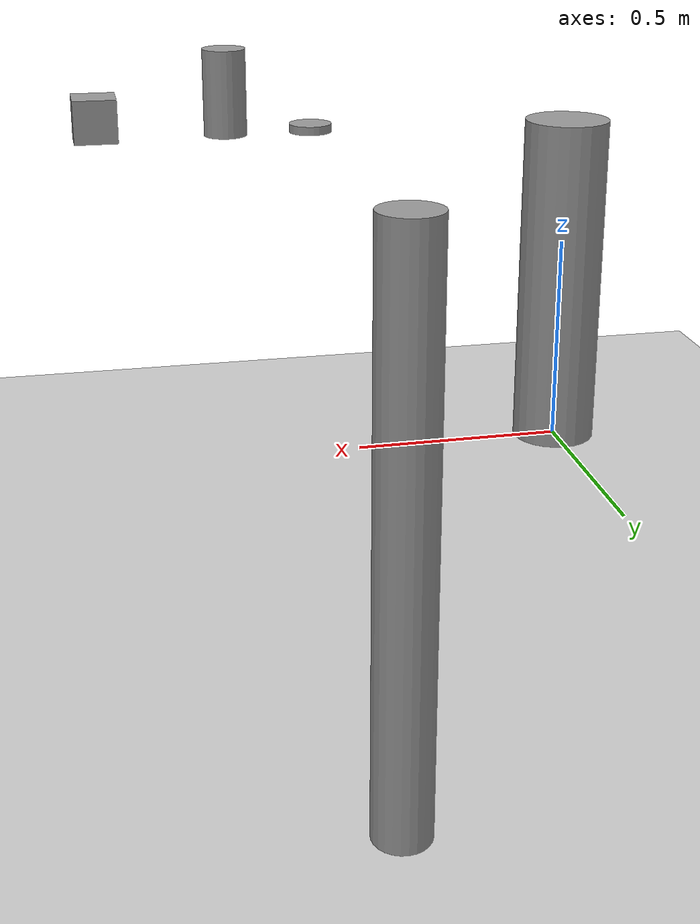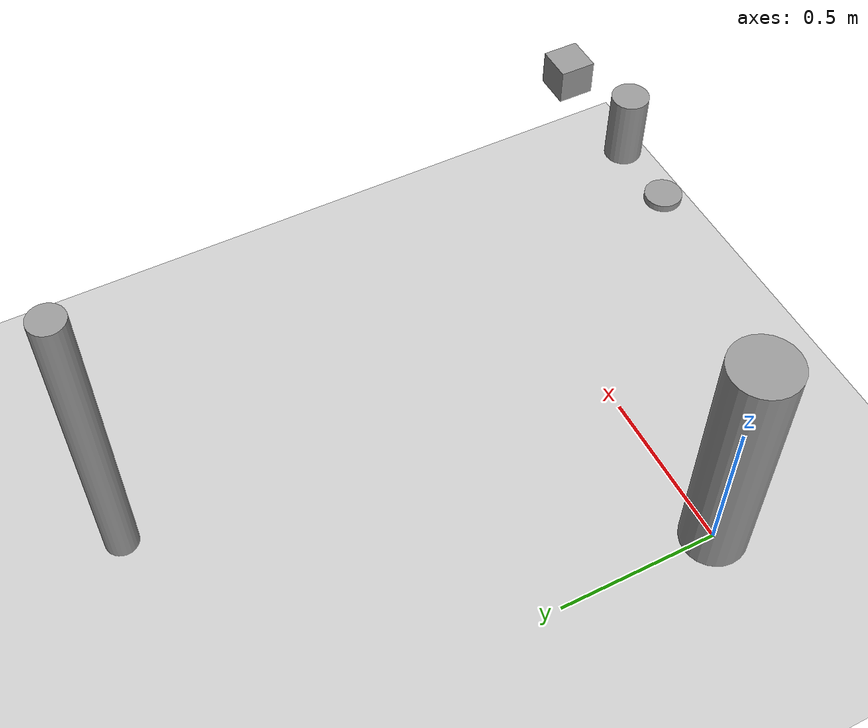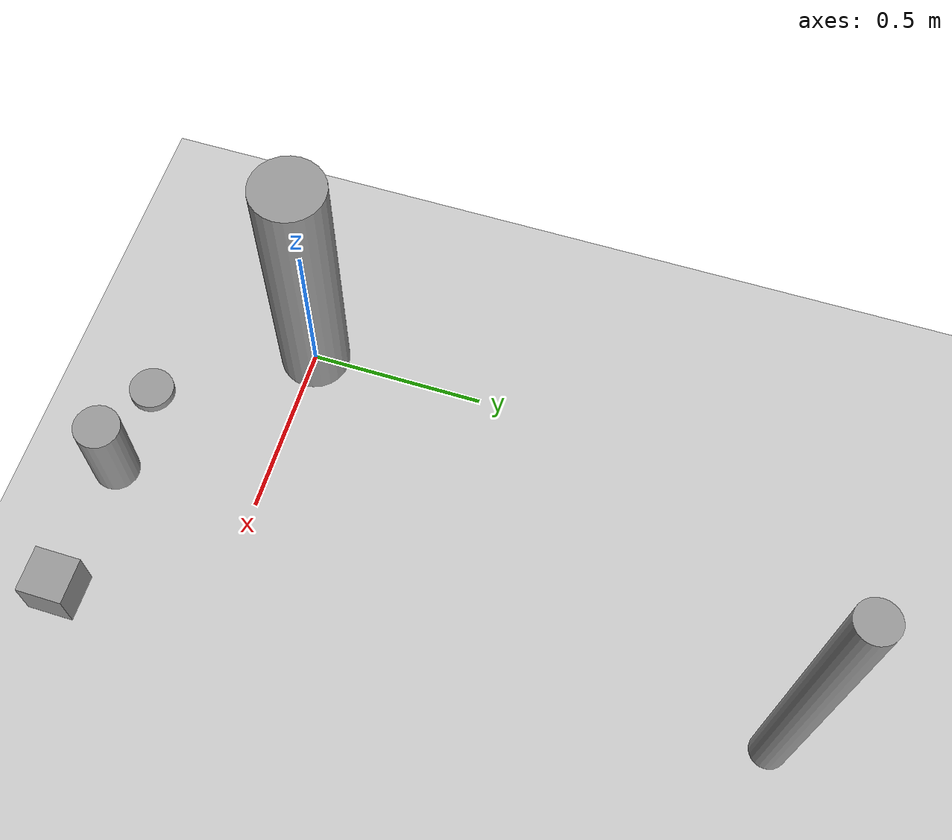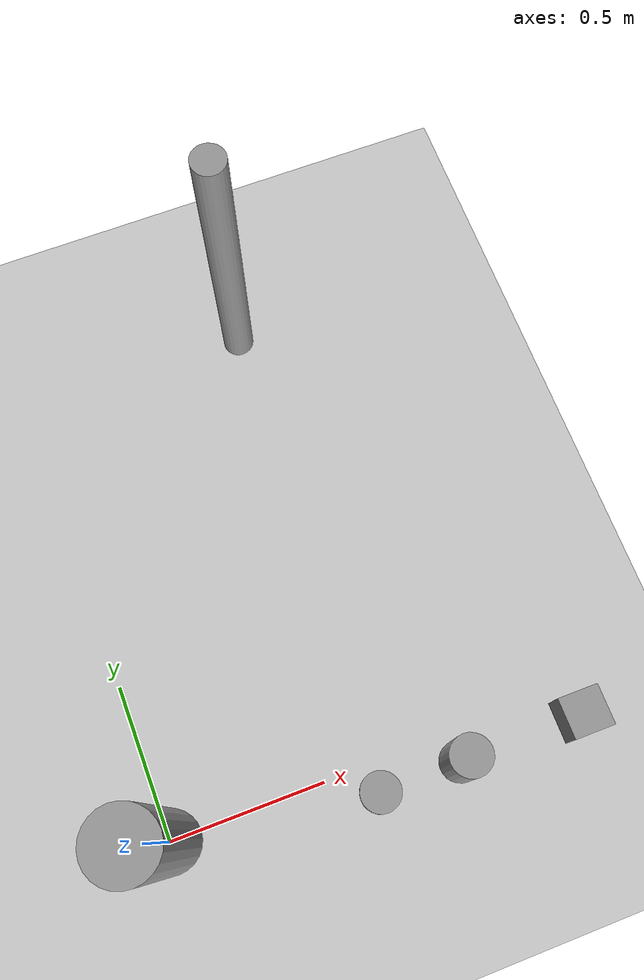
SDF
<sdf version="1.6">
 <world name="default">
  <light name="sun" type="directional">
   <pose>0 0 10 0 -0 0</pose>
   <diffuse>0.8 0.8 0.8 1</diffuse>
   <specular>0.2 0.2 0.2 1</specular>
   <attenuation>
    <range>1000</range>
    <constant>0.9</constant>
    <linear>0.01</linear>
    <quadratic>0.001</quadratic>
   </attenuation>
   <direction>-0.5 0.1 -0.9</direction>
  </light>
  <model name="ground_plane">
   <static>1</static>
   <link name="link">
    <collision name="collision">
     <geometry><plane><normal>0 0 1</normal><size>100 100</size></plane></geometry>
     <surface>
      <contact><collide_bitmask>65535</collide_bitmask></contact>
      <friction><ode><mu>100</mu><mu2>50</mu2></ode></friction>
     </surface>
    </collision>
    <visual name="visual">
     <cast_shadows>0</cast_shadows>
     <geometry><plane><normal>0 0 1</normal><size>100 100</size></plane></geometry>
     <material>
      <script><uri>file://media/materials/scripts/gazebo.material</uri><name>Gazebo/Grey</name></script>
     </material>
    </visual>
   </link>
  </model>
  <gravity>0 0 -9.8</gravity>
  <magnetic_field>6e-06 2.3e-05 -4.2e-05</magnetic_field>
  <atmosphere type="adiabatic"/>
  <physics name="default_physics" default="0" type="ode">
   <max_step_size>0.001</max_step_size>
   <real_time_factor>1</real_time_factor>
   <real_time_update_rate>1000</real_time_update_rate>
  </physics>
  <scene><ambient>0.4 0.4 0.4 1</ambient><background>0.7 0.7 0.7 1</background><shadows>1</shadows></scene>
  <spherical_coordinates>
   <surface_model>EARTH_WGS84</surface_model>
   <latitude_deg>0</latitude_deg>
   <longitude_deg>0</longitude_deg>
   <elevation>0</elevation>
   <heading_deg>0</heading_deg>
  </spherical_coordinates>
  <model name="ur10_cylinder">
   <static>1</static>
   <link name="link">
    <inertial>
     <mass>1</mass>
     <inertia><ixx>0.145833</ixx><ixy>0</ixy><ixz>0</ixz><iyy>0.145833</iyy><iyz>0</iyz><izz>0.125</izz></inertia>
    </inertial>
    <visual name="visual">
     <geometry><cylinder><radius>0.1</radius><length>0.8</length></cylinder></geometry>
     <material>
      <script><name>Gazebo/Grey</name><uri>file://media/materials/scripts/gazebo.material</uri></script>
      <shader type="vertex"><normal_map>__default__</normal_map></shader>
      <ambient>0.3 0.3 0.3 1</ambient>
      <diffuse>0.7 0.7 0.7 1</diffuse>
      <specular>0.01 0.01 0.01 1</specular>
      <emissive>0 0 0 1</emissive>
     </material>
    </visual>
    <collision name="collision">
     <geometry><cylinder><radius>0.1</radius><length>0.8</length></cylinder></geometry>
     <surface>
      <friction>
       <ode><mu>1</mu><mu2>1</mu2><fdir1>0 0 0</fdir1><slip1>0</slip1><slip2>0</slip2></ode>
       <torsional>
        <coefficient>1</coefficient>
        <patch_radius>0</patch_radius>
        <surface_radius>0</surface_radius>
        <use_patch_radius>1</use_patch_radius>
        <ode><slip>0</slip></ode>
       </torsional>
      </friction>
      <bounce><restitution_coefficient>0</restitution_coefficient><threshold>1e+06</threshold></bounce>
      <contact>
       <collide_without_contact>0</collide_without_contact>
       <collide_without_contact_bitmask>1</collide_without_contact_bitmask>
       <collide_bitmask>1</collide_bitmask>
       <ode>
        <soft_cfm>0</soft_cfm>
        <soft_erp>0.2</soft_erp>
        <kp>1e+13</kp>
        <kd>1</kd>
        <max_vel>0.01</max_vel>
        <min_depth>0</min_depth>
       </ode>
       <bullet>
        <split_impulse>1</split_impulse>
        <split_impulse_penetration_threshold>-0.01</split_impulse_penetration_threshold>
        <soft_cfm>0</soft_cfm>
        <soft_erp>0.2</soft_erp>
        <kp>1e+13</kp>
        <kd>1</kd>
       </bullet>
      </contact>
     </surface>
    </collision>
   </link>
   <static>0</static>
   <pose>0 0 0.4 0 -0 0</pose>
  </model>
  <model name="box0">
   <link name="link">
    <inertial>
     <mass>1</mass>
     <inertia>
      <ixx>0.166667</ixx>
      <ixy>0</ixy>
      <ixz>0</ixz>
      <iyy>0.166667</iyy>
      <iyz>0</iyz>
      <izz>0.166667</izz>
     </inertia>
    </inertial>
    <visual name="visual">
     <geometry><box><size>0.1 0.1 0.1</size></box></geometry>
     <material>
      <script><name>Gazebo/Grey</name><uri>file://media/materials/scripts/gazebo.material</uri></script>
      <shader type="vertex"><normal_map>__default__</normal_map></shader>
      <ambient>0.3 0.3 0.3 1</ambient>
      <diffuse>0.7 0.7 0.7 1</diffuse>
      <specular>0.01 0.01 0.01 1</specular>
      <emissive>0 0 0 1</emissive>
     </material>
    </visual>
    <collision name="collision">
     <geometry><box><size>0.1 0.1 0.1</size></box></geometry>
     <surface>
      <friction>
       <ode><mu>1</mu><mu2>1</mu2><fdir1>0 0 0</fdir1><slip1>0</slip1><slip2>0</slip2></ode>
       <torsional>
        <coefficient>1</coefficient>
        <patch_radius>0</patch_radius>
        <surface_radius>0</surface_radius>
        <use_patch_radius>1</use_patch_radius>
        <ode><slip>0</slip></ode>
       </torsional>
      </friction>
      <bounce><restitution_coefficient>0</restitution_coefficient><threshold>1e+06</threshold></bounce>
      <contact>
       <collide_without_contact>0</collide_without_contact>
       <collide_without_contact_bitmask>1</collide_without_contact_bitmask>
       <collide_bitmask>1</collide_bitmask>
       <ode>
        <soft_cfm>0</soft_cfm>
        <soft_erp>0.2</soft_erp>
        <kp>1e+13</kp>
        <kd>1</kd>
        <max_vel>0.01</max_vel>
        <min_depth>0</min_depth>
       </ode>
       <bullet>
        <split_impulse>1</split_impulse>
        <split_impulse_penetration_threshold>-0.01</split_impulse_penetration_threshold>
        <soft_cfm>0</soft_cfm>
        <soft_erp>0.2</soft_erp>
        <kp>1e+13</kp>
        <kd>1</kd>
       </bullet>
      </contact>
     </surface>
    </collision>
   </link>
   <static>0</static>
   <pose>1.1 -0.1 0.825 0 -0 5.6e-05</pose>
  </model>
  <model name="bcylinder">
   <link name="link">
    <inertial>
     <mass>1</mass>
     <inertia><ixx>0.145833</ixx><ixy>0</ixy><ixz>0</ixz><iyy>0.145833</iyy><iyz>0</iyz><izz>0.125</izz></inertia>
    </inertial>
    <visual name="visual">
     <geometry><cylinder><radius>0.05</radius><length>0.02</length></cylinder></geometry>
     <material>
      <script><name>Gazebo/Grey</name><uri>file://media/materials/scripts/gazebo.material</uri></script>
      <shader type="vertex"><normal_map>__default__</normal_map></shader>
      <ambient>0.3 0.3 0.3 1</ambient>
      <diffuse>0.7 0.7 0.7 1</diffuse>
      <specular>0.01 0.01 0.01 1</specular>
      <emissive>0 0 0 1</emissive>
     </material>
    </visual>
    <collision name="collision">
     <geometry><cylinder><radius>0.05</radius><length>0.02</length></cylinder></geometry>
     <surface>
      <friction>
       <ode><mu>1</mu><mu2>1</mu2><fdir1>0 0 0</fdir1><slip1>0</slip1><slip2>0</slip2></ode>
       <torsional>
        <coefficient>1</coefficient>
        <patch_radius>0</patch_radius>
        <surface_radius>0</surface_radius>
        <use_patch_radius>1</use_patch_radius>
        <ode><slip>0</slip></ode>
       </torsional>
      </friction>
      <bounce><restitution_coefficient>0</restitution_coefficient><threshold>1e+06</threshold></bounce>
      <contact>
       <collide_without_contact>0</collide_without_contact>
       <collide_without_contact_bitmask>1</collide_without_contact_bitmask>
       <collide_bitmask>1</collide_bitmask>
       <ode>
        <soft_cfm>0</soft_cfm>
        <soft_erp>0.2</soft_erp>
        <kp>1e+13</kp>
        <kd>1</kd>
        <max_vel>0.01</max_vel>
        <min_depth>0</min_depth>
       </ode>
       <bullet>
        <split_impulse>1</split_impulse>
        <split_impulse_penetration_threshold>-0.01</split_impulse_penetration_threshold>
        <soft_cfm>0</soft_cfm>
        <soft_erp>0.2</soft_erp>
        <kp>1e+13</kp>
        <kd>1</kd>
       </bullet>
      </contact>
     </surface>
    </collision>
   </link>
   <static>0</static>
   <pose>0.6 -0.1 0.785 -4.1e-05 8.1e-05 -1.3e-05</pose>
  </model>
  <model name="kinect_cylinder">
   <link name="link">
    <inertial>
     <mass>1</mass>
     <inertia><ixx>0.145833</ixx><ixy>0</ixy><ixz>0</ixz><iyy>0.145833</iyy><iyz>0</iyz><izz>0.125</izz></inertia>
    </inertial>
    <visual name="visual">
     <geometry><cylinder><radius>0.05</radius><length>1</length></cylinder></geometry>
     <material>
      <script><name>Gazebo/Grey</name><uri>file://media/materials/scripts/gazebo.material</uri></script>
      <shader type="vertex"><normal_map>__default__</normal_map></shader>
      <ambient>0.3 0.3 0.3 1</ambient>
      <diffuse>0.7 0.7 0.7 1</diffuse>
      <specular>0.01 0.01 0.01 1</specular>
      <emissive>0 0 0 1</emissive>
     </material>
    </visual>
    <collision name="collision">
     <geometry><cylinder><radius>0.05</radius><length>1</length></cylinder></geometry>
     <surface>
      <friction>
       <ode><mu>1</mu><mu2>1</mu2><fdir1>0 0 0</fdir1><slip1>0</slip1><slip2>0</slip2></ode>
       <torsional>
        <coefficient>1</coefficient>
        <patch_radius>0</patch_radius>
        <surface_radius>0</surface_radius>
        <use_patch_radius>1</use_patch_radius>
        <ode><slip>0</slip></ode>
       </torsional>
      </friction>
      <bounce><restitution_coefficient>0</restitution_coefficient><threshold>1e+06</threshold></bounce>
      <contact>
       <collide_without_contact>0</collide_without_contact>
       <collide_without_contact_bitmask>1</collide_without_contact_bitmask>
       <collide_bitmask>1</collide_bitmask>
       <ode>
        <soft_cfm>0</soft_cfm>
        <soft_erp>0.2</soft_erp>
        <kp>1e+13</kp>
        <kd>1</kd>
        <max_vel>0.01</max_vel>
        <min_depth>0</min_depth>
       </ode>
       <bullet>
        <split_impulse>1</split_impulse>
        <split_impulse_penetration_threshold>-0.01</split_impulse_penetration_threshold>
        <soft_cfm>0</soft_cfm>
        <soft_erp>0.2</soft_erp>
        <kp>1e+13</kp>
        <kd>1</kd>
       </bullet>
      </contact>
     </surface>
    </collision>
   </link>
   <static>1</static>
   <pose>0.75 1.5 0.5 0 -0 0</pose>
  </model>
  <model name="scylinder">
   <link name="link">
    <inertial>
     <mass>1</mass>
     <inertia><ixx>0.145833</ixx><ixy>0</ixy><ixz>0</ixz><iyy>0.145833</iyy><iyz>0</iyz><izz>0.125</izz></inertia>
    </inertial>
    <visual name="visual">
     <geometry><cylinder><radius>0.05</radius><length>0.2</length></cylinder></geometry>
     <material>
      <script><name>Gazebo/Grey</name><uri>file://media/materials/scripts/gazebo.material</uri></script>
      <shader type="vertex"><normal_map>__default__</normal_map></shader>
      <ambient>0.3 0.3 0.3 1</ambient>
      <diffuse>0.7 0.7 0.7 1</diffuse>
      <specular>0.01 0.01 0.01 1</specular>
      <emissive>0 0 0 1</emissive>
     </material>
    </visual>
    <collision name="collision">
     <geometry><cylinder><radius>0.05</radius><length>0.2</length></cylinder></geometry>
     <surface>
      <friction>
       <ode><mu>1</mu><mu2>1</mu2><fdir1>0 0 0</fdir1><slip1>0</slip1><slip2>0</slip2></ode>
       <torsional>
        <coefficient>1</coefficient>
        <patch_radius>0</patch_radius>
        <surface_radius>0</surface_radius>
        <use_patch_radius>1</use_patch_radius>
        <ode><slip>0</slip></ode>
       </torsional>
      </friction>
      <bounce><restitution_coefficient>0</restitution_coefficient><threshold>1e+06</threshold></bounce>
      <contact>
       <collide_without_contact>0</collide_without_contact>
       <collide_without_contact_bitmask>1</collide_without_contact_bitmask>
       <collide_bitmask>1</collide_bitmask>
       <ode>
        <soft_cfm>0</soft_cfm>
        <soft_erp>0.2</soft_erp>
        <kp>1e+13</kp>
        <kd>1</kd>
        <max_vel>0.01</max_vel>
        <min_depth>0</min_depth>
       </ode>
       <bullet>
        <split_impulse>1</split_impulse>
        <split_impulse_penetration_threshold>-0.01</split_impulse_penetration_threshold>
        <soft_cfm>0</soft_cfm>
        <soft_erp>0.2</soft_erp>
        <kp>1e+13</kp>
        <kd>1</kd>
       </bullet>
      </contact>
     </surface>
    </collision>
   </link>
   <static>0</static>
   <pose>0.800002 -0.1 0.875 -5.9e-05 7.8e-05 0.008269</pose>
  </model>
 </world>
</sdf>
